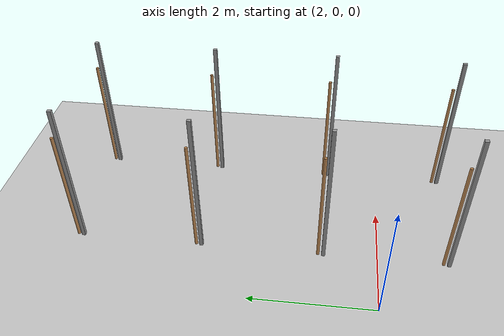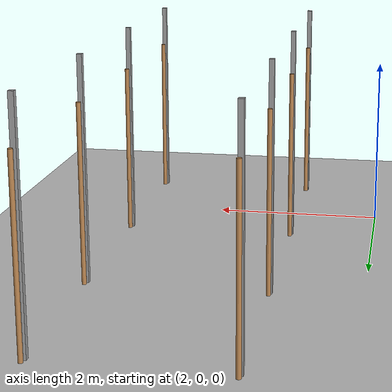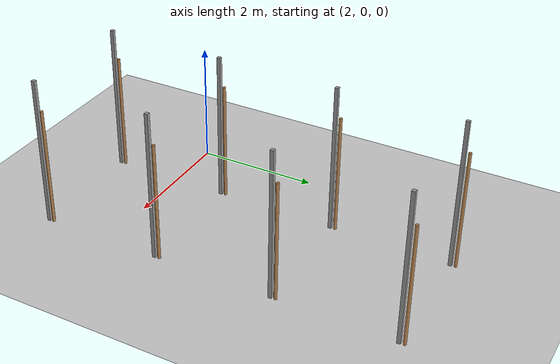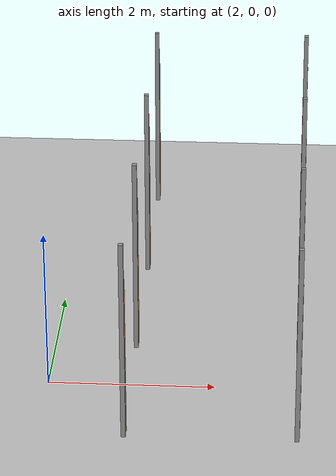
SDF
<sdf version="1.7">
 <world name="default">
  <model name="ground_plane">
   <static>1</static>
   <link name="link">
    <collision name="collision">
     <geometry><plane><normal>0 0 1</normal><size>100 100</size></plane></geometry>
     <surface><friction><ode><mu>100</mu><mu2>50</mu2></ode></friction></surface>
    </collision>
    <visual name="visual">
     <cast_shadows>0</cast_shadows>
     <geometry><plane><normal>0 0 1</normal><size>100 100</size></plane></geometry>
     <material>
      <script><uri>file://media/materials/scripts/gazebo.material</uri><name>Gazebo/Grey</name></script>
     </material>
    </visual>
   </link>
  </model>
  <model name="vineyard1_clone_2">
   <pose>3 -1 0 0 -0 0</pose>
   <frame name="vineyard::__model__" attached_to="vineyard::link">
    <pose relative_to="__model__">0 0 0 0 -0 0</pose>
   </frame>
   <link name="vineyard::link">
    <pose relative_to="vineyard::__model__">0 -0.042492 1.02106 0 -0 0</pose>
    <inertial>
     <mass>0.0175</mass>
     <inertia>
      <ixx>9.75e-06</ixx>
      <ixy>0</ixy>
      <ixz>0</ixz>
      <iyy>9.75e-06</iyy>
      <iyz>0</iyz>
      <izz>8.3e-07</izz>
     </inertia>
    </inertial>
    <visual name="visual">
     <geometry><cylinder><radius>0.025</radius><length>2</length></cylinder></geometry>
     <material>
      <script><uri>file://media/materials/scripts/gazebo.material</uri><name>Gazebo/Wood</name></script>
      <shader type="pixel"><normal_map>__default__</normal_map></shader>
      <ambient>1 1 1 1</ambient>
      <diffuse>1 1 1 1</diffuse>
      <specular>0.2 0.2 0.2 1</specular>
      <emissive>0 0 0 1</emissive>
     </material>
    </visual>
    <collision name="collision">
     <geometry><cylinder><radius>0.025</radius><length>2</length></cylinder></geometry>
     <surface>
      <friction>
       <ode><mu>1</mu><mu2>1</mu2><fdir1>0 0 0</fdir1><slip1>0</slip1><slip2>0</slip2></ode>
       <torsional>
        <coefficient>1</coefficient>
        <patch_radius>0</patch_radius>
        <surface_radius>0.01</surface_radius>
        <use_patch_radius>0</use_patch_radius>
        <ode><slip>0</slip></ode>
       </torsional>
      </friction>
      <bounce><restitution_coefficient>0</restitution_coefficient><threshold>1e+06</threshold></bounce>
      <contact>
       <collide_without_contact>0</collide_without_contact>
       <collide_without_contact_bitmask>1</collide_without_contact_bitmask>
       <collide_bitmask>1</collide_bitmask>
       <ode>
        <soft_cfm>0</soft_cfm>
        <soft_erp>0.2</soft_erp>
        <kp>100000</kp>
        <kd>100</kd>
        <max_vel>100</max_vel>
        <min_depth>0.001</min_depth>
       </ode>
       <bullet>
        <split_impulse>1</split_impulse>
        <split_impulse_penetration_threshold>-0.01</split_impulse_penetration_threshold>
        <soft_cfm>0</soft_cfm>
        <soft_erp>0.2</soft_erp>
        <kp>100000</kp>
        <kd>100</kd>
       </bullet>
      </contact>
     </surface>
    </collision>
   </link>
   <link name="vineyard::link_0">
    <inertial>
     <mass>1</mass>
     <inertia>
      <ixx>0.166667</ixx>
      <ixy>0</ixy>
      <ixz>0</ixz>
      <iyy>0.166667</iyy>
      <iyz>0</iyz>
      <izz>0.166667</izz>
     </inertia>
    </inertial>
    <pose relative_to="vineyard::__model__">-0.005498 -0.128915 1.26447 -1.3e-05 1.5e-05 -0</pose>
    <visual name="visual">
     <geometry><box><size>0.055 0.06 2.5</size></box></geometry>
     <material>
      <lighting>1</lighting>
      <script><uri>file://media/materials/scripts/gazebo.material</uri><name>Gazebo/Grey</name></script>
      <shader type="pixel"><normal_map>__default__</normal_map></shader>
      <ambient>0.3 0.3 0.3 1</ambient>
      <diffuse>0.7 0.7 0.7 1</diffuse>
      <specular>0.01 0.01 0.01 1</specular>
      <emissive>0 0 0 1</emissive>
     </material>
    </visual>
    <collision name="collision">
     <geometry><box><size>0.055 0.06 2.5</size></box></geometry>
     <surface>
      <friction>
       <ode><mu>1</mu><mu2>1</mu2><fdir1>0 0 0</fdir1><slip1>0</slip1><slip2>0</slip2></ode>
       <torsional>
        <coefficient>1</coefficient>
        <patch_radius>0</patch_radius>
        <surface_radius>0</surface_radius>
        <use_patch_radius>1</use_patch_radius>
        <ode><slip>0</slip></ode>
       </torsional>
      </friction>
      <bounce><restitution_coefficient>0</restitution_coefficient><threshold>1e+06</threshold></bounce>
      <contact>
       <collide_without_contact>0</collide_without_contact>
       <collide_without_contact_bitmask>1</collide_without_contact_bitmask>
       <collide_bitmask>1</collide_bitmask>
       <ode>
        <soft_cfm>0</soft_cfm>
        <soft_erp>0.2</soft_erp>
        <kp>1e+13</kp>
        <kd>1</kd>
        <max_vel>0.01</max_vel>
        <min_depth>0</min_depth>
       </ode>
       <bullet>
        <split_impulse>1</split_impulse>
        <split_impulse_penetration_threshold>-0.01</split_impulse_penetration_threshold>
        <soft_cfm>0</soft_cfm>
        <soft_erp>0.2</soft_erp>
        <kp>1e+13</kp>
        <kd>1</kd>
       </bullet>
      </contact>
     </surface>
    </collision>
   </link>
   <static>1</static>
  </model>
  <model name="vineyard1_clone_3">
   <pose>5 -1 0 0 -0 0</pose>
   <frame name="vineyard::__model__" attached_to="vineyard::link">
    <pose relative_to="__model__">0 0 0 0 -0 0</pose>
   </frame>
   <link name="vineyard::link">
    <pose relative_to="vineyard::__model__">0 -0.042492 1.02106 0 -0 0</pose>
    <inertial>
     <mass>0.0175</mass>
     <inertia>
      <ixx>9.75e-06</ixx>
      <ixy>0</ixy>
      <ixz>0</ixz>
      <iyy>9.75e-06</iyy>
      <iyz>0</iyz>
      <izz>8.3e-07</izz>
     </inertia>
    </inertial>
    <visual name="visual">
     <geometry><cylinder><radius>0.025</radius><length>2</length></cylinder></geometry>
     <material>
      <script><uri>file://media/materials/scripts/gazebo.material</uri><name>Gazebo/Wood</name></script>
      <shader type="pixel"><normal_map>__default__</normal_map></shader>
      <ambient>1 1 1 1</ambient>
      <diffuse>1 1 1 1</diffuse>
      <specular>0.2 0.2 0.2 1</specular>
      <emissive>0 0 0 1</emissive>
     </material>
    </visual>
    <collision name="collision">
     <geometry><cylinder><radius>0.025</radius><length>2</length></cylinder></geometry>
     <surface>
      <friction>
       <ode><mu>1</mu><mu2>1</mu2><fdir1>0 0 0</fdir1><slip1>0</slip1><slip2>0</slip2></ode>
       <torsional>
        <coefficient>1</coefficient>
        <patch_radius>0</patch_radius>
        <surface_radius>0.01</surface_radius>
        <use_patch_radius>0</use_patch_radius>
        <ode><slip>0</slip></ode>
       </torsional>
      </friction>
      <bounce><restitution_coefficient>0</restitution_coefficient><threshold>1e+06</threshold></bounce>
      <contact>
       <collide_without_contact>0</collide_without_contact>
       <collide_without_contact_bitmask>1</collide_without_contact_bitmask>
       <collide_bitmask>1</collide_bitmask>
       <ode>
        <soft_cfm>0</soft_cfm>
        <soft_erp>0.2</soft_erp>
        <kp>100000</kp>
        <kd>100</kd>
        <max_vel>100</max_vel>
        <min_depth>0.001</min_depth>
       </ode>
       <bullet>
        <split_impulse>1</split_impulse>
        <split_impulse_penetration_threshold>-0.01</split_impulse_penetration_threshold>
        <soft_cfm>0</soft_cfm>
        <soft_erp>0.2</soft_erp>
        <kp>100000</kp>
        <kd>100</kd>
       </bullet>
      </contact>
     </surface>
    </collision>
   </link>
   <link name="vineyard::link_0">
    <inertial>
     <mass>1</mass>
     <inertia>
      <ixx>0.166667</ixx>
      <ixy>0</ixy>
      <ixz>0</ixz>
      <iyy>0.166667</iyy>
      <iyz>0</iyz>
      <izz>0.166667</izz>
     </inertia>
    </inertial>
    <pose relative_to="vineyard::__model__">-0.005498 -0.128915 1.26447 -1.3e-05 1.5e-05 -0</pose>
    <visual name="visual">
     <geometry><box><size>0.055 0.06 2.5</size></box></geometry>
     <material>
      <lighting>1</lighting>
      <script><uri>file://media/materials/scripts/gazebo.material</uri><name>Gazebo/Grey</name></script>
      <shader type="pixel"><normal_map>__default__</normal_map></shader>
      <ambient>0.3 0.3 0.3 1</ambient>
      <diffuse>0.7 0.7 0.7 1</diffuse>
      <specular>0.01 0.01 0.01 1</specular>
      <emissive>0 0 0 1</emissive>
     </material>
    </visual>
    <collision name="collision">
     <geometry><box><size>0.055 0.06 2.5</size></box></geometry>
     <surface>
      <friction>
       <ode><mu>1</mu><mu2>1</mu2><fdir1>0 0 0</fdir1><slip1>0</slip1><slip2>0</slip2></ode>
       <torsional>
        <coefficient>1</coefficient>
        <patch_radius>0</patch_radius>
        <surface_radius>0</surface_radius>
        <use_patch_radius>1</use_patch_radius>
        <ode><slip>0</slip></ode>
       </torsional>
      </friction>
      <bounce><restitution_coefficient>0</restitution_coefficient><threshold>1e+06</threshold></bounce>
      <contact>
       <collide_without_contact>0</collide_without_contact>
       <collide_without_contact_bitmask>1</collide_without_contact_bitmask>
       <collide_bitmask>1</collide_bitmask>
       <ode>
        <soft_cfm>0</soft_cfm>
        <soft_erp>0.2</soft_erp>
        <kp>1e+13</kp>
        <kd>1</kd>
        <max_vel>0.01</max_vel>
        <min_depth>0</min_depth>
       </ode>
       <bullet>
        <split_impulse>1</split_impulse>
        <split_impulse_penetration_threshold>-0.01</split_impulse_penetration_threshold>
        <soft_cfm>0</soft_cfm>
        <soft_erp>0.2</soft_erp>
        <kp>1e+13</kp>
        <kd>1</kd>
       </bullet>
      </contact>
     </surface>
    </collision>
   </link>
   <static>1</static>
  </model>
  <model name="vineyard1_clone_6">
   <pose>3 1 0 0 -0 0</pose>
   <frame name="vineyard::__model__" attached_to="vineyard::link">
    <pose relative_to="__model__">0 0 0 0 -0 0</pose>
   </frame>
   <link name="vineyard::link">
    <pose relative_to="vineyard::__model__">0 -0.042492 1.02106 0 -0 0</pose>
    <inertial>
     <mass>0.0175</mass>
     <inertia>
      <ixx>9.75e-06</ixx>
      <ixy>0</ixy>
      <ixz>0</ixz>
      <iyy>9.75e-06</iyy>
      <iyz>0</iyz>
      <izz>8.3e-07</izz>
     </inertia>
    </inertial>
    <visual name="visual">
     <geometry><cylinder><radius>0.025</radius><length>2</length></cylinder></geometry>
     <material>
      <script><uri>file://media/materials/scripts/gazebo.material</uri><name>Gazebo/Wood</name></script>
      <shader type="pixel"><normal_map>__default__</normal_map></shader>
      <ambient>1 1 1 1</ambient>
      <diffuse>1 1 1 1</diffuse>
      <specular>0.2 0.2 0.2 1</specular>
      <emissive>0 0 0 1</emissive>
     </material>
    </visual>
    <collision name="collision">
     <geometry><cylinder><radius>0.025</radius><length>2</length></cylinder></geometry>
     <surface>
      <friction>
       <ode><mu>1</mu><mu2>1</mu2><fdir1>0 0 0</fdir1><slip1>0</slip1><slip2>0</slip2></ode>
       <torsional>
        <coefficient>1</coefficient>
        <patch_radius>0</patch_radius>
        <surface_radius>0.01</surface_radius>
        <use_patch_radius>0</use_patch_radius>
        <ode><slip>0</slip></ode>
       </torsional>
      </friction>
      <bounce><restitution_coefficient>0</restitution_coefficient><threshold>1e+06</threshold></bounce>
      <contact>
       <collide_without_contact>0</collide_without_contact>
       <collide_without_contact_bitmask>1</collide_without_contact_bitmask>
       <collide_bitmask>1</collide_bitmask>
       <ode>
        <soft_cfm>0</soft_cfm>
        <soft_erp>0.2</soft_erp>
        <kp>100000</kp>
        <kd>100</kd>
        <max_vel>100</max_vel>
        <min_depth>0.001</min_depth>
       </ode>
       <bullet>
        <split_impulse>1</split_impulse>
        <split_impulse_penetration_threshold>-0.01</split_impulse_penetration_threshold>
        <soft_cfm>0</soft_cfm>
        <soft_erp>0.2</soft_erp>
        <kp>100000</kp>
        <kd>100</kd>
       </bullet>
      </contact>
     </surface>
    </collision>
   </link>
   <link name="vineyard::link_0">
    <inertial>
     <mass>1</mass>
     <inertia>
      <ixx>0.166667</ixx>
      <ixy>0</ixy>
      <ixz>0</ixz>
      <iyy>0.166667</iyy>
      <iyz>0</iyz>
      <izz>0.166667</izz>
     </inertia>
    </inertial>
    <pose relative_to="vineyard::__model__">-0.005498 -0.128915 1.26447 -1.3e-05 1.5e-05 -0</pose>
    <visual name="visual">
     <geometry><box><size>0.055 0.06 2.5</size></box></geometry>
     <material>
      <lighting>1</lighting>
      <script><uri>file://media/materials/scripts/gazebo.material</uri><name>Gazebo/Grey</name></script>
      <shader type="pixel"><normal_map>__default__</normal_map></shader>
      <ambient>0.3 0.3 0.3 1</ambient>
      <diffuse>0.7 0.7 0.7 1</diffuse>
      <specular>0.01 0.01 0.01 1</specular>
      <emissive>0 0 0 1</emissive>
     </material>
    </visual>
    <collision name="collision">
     <geometry><box><size>0.055 0.06 2.5</size></box></geometry>
     <surface>
      <friction>
       <ode><mu>1</mu><mu2>1</mu2><fdir1>0 0 0</fdir1><slip1>0</slip1><slip2>0</slip2></ode>
       <torsional>
        <coefficient>1</coefficient>
        <patch_radius>0</patch_radius>
        <surface_radius>0</surface_radius>
        <use_patch_radius>1</use_patch_radius>
        <ode><slip>0</slip></ode>
       </torsional>
      </friction>
      <bounce><restitution_coefficient>0</restitution_coefficient><threshold>1e+06</threshold></bounce>
      <contact>
       <collide_without_contact>0</collide_without_contact>
       <collide_without_contact_bitmask>1</collide_without_contact_bitmask>
       <collide_bitmask>1</collide_bitmask>
       <ode>
        <soft_cfm>0</soft_cfm>
        <soft_erp>0.2</soft_erp>
        <kp>1e+13</kp>
        <kd>1</kd>
        <max_vel>0.01</max_vel>
        <min_depth>0</min_depth>
       </ode>
       <bullet>
        <split_impulse>1</split_impulse>
        <split_impulse_penetration_threshold>-0.01</split_impulse_penetration_threshold>
        <soft_cfm>0</soft_cfm>
        <soft_erp>0.2</soft_erp>
        <kp>1e+13</kp>
        <kd>1</kd>
       </bullet>
      </contact>
     </surface>
    </collision>
   </link>
   <static>1</static>
  </model>
  <model name="vineyard1_clone_7">
   <pose>5 1 0 0 -0 0</pose>
   <frame name="vineyard::__model__" attached_to="vineyard::link">
    <pose relative_to="__model__">0 0 0 0 -0 0</pose>
   </frame>
   <link name="vineyard::link">
    <pose relative_to="vineyard::__model__">0 -0.042492 1.02106 0 -0 0</pose>
    <inertial>
     <mass>0.0175</mass>
     <inertia>
      <ixx>9.75e-06</ixx>
      <ixy>0</ixy>
      <ixz>0</ixz>
      <iyy>9.75e-06</iyy>
      <iyz>0</iyz>
      <izz>8.3e-07</izz>
     </inertia>
    </inertial>
    <visual name="visual">
     <geometry><cylinder><radius>0.025</radius><length>2</length></cylinder></geometry>
     <material>
      <script><uri>file://media/materials/scripts/gazebo.material</uri><name>Gazebo/Wood</name></script>
      <shader type="pixel"><normal_map>__default__</normal_map></shader>
      <ambient>1 1 1 1</ambient>
      <diffuse>1 1 1 1</diffuse>
      <specular>0.2 0.2 0.2 1</specular>
      <emissive>0 0 0 1</emissive>
     </material>
    </visual>
    <collision name="collision">
     <geometry><cylinder><radius>0.025</radius><length>2</length></cylinder></geometry>
     <surface>
      <friction>
       <ode><mu>1</mu><mu2>1</mu2><fdir1>0 0 0</fdir1><slip1>0</slip1><slip2>0</slip2></ode>
       <torsional>
        <coefficient>1</coefficient>
        <patch_radius>0</patch_radius>
        <surface_radius>0.01</surface_radius>
        <use_patch_radius>0</use_patch_radius>
        <ode><slip>0</slip></ode>
       </torsional>
      </friction>
      <bounce><restitution_coefficient>0</restitution_coefficient><threshold>1e+06</threshold></bounce>
      <contact>
       <collide_without_contact>0</collide_without_contact>
       <collide_without_contact_bitmask>1</collide_without_contact_bitmask>
       <collide_bitmask>1</collide_bitmask>
       <ode>
        <soft_cfm>0</soft_cfm>
        <soft_erp>0.2</soft_erp>
        <kp>100000</kp>
        <kd>100</kd>
        <max_vel>100</max_vel>
        <min_depth>0.001</min_depth>
       </ode>
       <bullet>
        <split_impulse>1</split_impulse>
        <split_impulse_penetration_threshold>-0.01</split_impulse_penetration_threshold>
        <soft_cfm>0</soft_cfm>
        <soft_erp>0.2</soft_erp>
        <kp>100000</kp>
        <kd>100</kd>
       </bullet>
      </contact>
     </surface>
    </collision>
   </link>
   <link name="vineyard::link_0">
    <inertial>
     <mass>1</mass>
     <inertia>
      <ixx>0.166667</ixx>
      <ixy>0</ixy>
      <ixz>0</ixz>
      <iyy>0.166667</iyy>
      <iyz>0</iyz>
      <izz>0.166667</izz>
     </inertia>
    </inertial>
    <pose relative_to="vineyard::__model__">-0.005498 -0.128915 1.26447 -1.3e-05 1.5e-05 -0</pose>
    <visual name="visual">
     <geometry><box><size>0.055 0.06 2.5</size></box></geometry>
     <material>
      <lighting>1</lighting>
      <script><uri>file://media/materials/scripts/gazebo.material</uri><name>Gazebo/Grey</name></script>
      <shader type="pixel"><normal_map>__default__</normal_map></shader>
      <ambient>0.3 0.3 0.3 1</ambient>
      <diffuse>0.7 0.7 0.7 1</diffuse>
      <specular>0.01 0.01 0.01 1</specular>
      <emissive>0 0 0 1</emissive>
     </material>
    </visual>
    <collision name="collision">
     <geometry><box><size>0.055 0.06 2.5</size></box></geometry>
     <surface>
      <friction>
       <ode><mu>1</mu><mu2>1</mu2><fdir1>0 0 0</fdir1><slip1>0</slip1><slip2>0</slip2></ode>
       <torsional>
        <coefficient>1</coefficient>
        <patch_radius>0</patch_radius>
        <surface_radius>0</surface_radius>
        <use_patch_radius>1</use_patch_radius>
        <ode><slip>0</slip></ode>
       </torsional>
      </friction>
      <bounce><restitution_coefficient>0</restitution_coefficient><threshold>1e+06</threshold></bounce>
      <contact>
       <collide_without_contact>0</collide_without_contact>
       <collide_without_contact_bitmask>1</collide_without_contact_bitmask>
       <collide_bitmask>1</collide_bitmask>
       <ode>
        <soft_cfm>0</soft_cfm>
        <soft_erp>0.2</soft_erp>
        <kp>1e+13</kp>
        <kd>1</kd>
        <max_vel>0.01</max_vel>
        <min_depth>0</min_depth>
       </ode>
       <bullet>
        <split_impulse>1</split_impulse>
        <split_impulse_penetration_threshold>-0.01</split_impulse_penetration_threshold>
        <soft_cfm>0</soft_cfm>
        <soft_erp>0.2</soft_erp>
        <kp>1e+13</kp>
        <kd>1</kd>
       </bullet>
      </contact>
     </surface>
    </collision>
   </link>
   <static>1</static>
  </model>
  <model name="vineyard1_clone_10">
   <pose>3 3 0 0 -0 0</pose>
   <frame name="vineyard::__model__" attached_to="vineyard::link">
    <pose relative_to="__model__">0 0 0 0 -0 0</pose>
   </frame>
   <link name="vineyard::link">
    <pose relative_to="vineyard::__model__">0 -0.042492 1.02106 0 -0 0</pose>
    <inertial>
     <mass>0.0175</mass>
     <inertia>
      <ixx>9.75e-06</ixx>
      <ixy>0</ixy>
      <ixz>0</ixz>
      <iyy>9.75e-06</iyy>
      <iyz>0</iyz>
      <izz>8.3e-07</izz>
     </inertia>
    </inertial>
    <visual name="visual">
     <geometry><cylinder><radius>0.025</radius><length>2</length></cylinder></geometry>
     <material>
      <script><uri>file://media/materials/scripts/gazebo.material</uri><name>Gazebo/Wood</name></script>
      <shader type="pixel"><normal_map>__default__</normal_map></shader>
      <ambient>1 1 1 1</ambient>
      <diffuse>1 1 1 1</diffuse>
      <specular>0.2 0.2 0.2 1</specular>
      <emissive>0 0 0 1</emissive>
     </material>
    </visual>
    <collision name="collision">
     <geometry><cylinder><radius>0.025</radius><length>2</length></cylinder></geometry>
     <surface>
      <friction>
       <ode><mu>1</mu><mu2>1</mu2><fdir1>0 0 0</fdir1><slip1>0</slip1><slip2>0</slip2></ode>
       <torsional>
        <coefficient>1</coefficient>
        <patch_radius>0</patch_radius>
        <surface_radius>0.01</surface_radius>
        <use_patch_radius>0</use_patch_radius>
        <ode><slip>0</slip></ode>
       </torsional>
      </friction>
      <bounce><restitution_coefficient>0</restitution_coefficient><threshold>1e+06</threshold></bounce>
      <contact>
       <collide_without_contact>0</collide_without_contact>
       <collide_without_contact_bitmask>1</collide_without_contact_bitmask>
       <collide_bitmask>1</collide_bitmask>
       <ode>
        <soft_cfm>0</soft_cfm>
        <soft_erp>0.2</soft_erp>
        <kp>100000</kp>
        <kd>100</kd>
        <max_vel>100</max_vel>
        <min_depth>0.001</min_depth>
       </ode>
       <bullet>
        <split_impulse>1</split_impulse>
        <split_impulse_penetration_threshold>-0.01</split_impulse_penetration_threshold>
        <soft_cfm>0</soft_cfm>
        <soft_erp>0.2</soft_erp>
        <kp>100000</kp>
        <kd>100</kd>
       </bullet>
      </contact>
     </surface>
    </collision>
   </link>
   <link name="vineyard::link_0">
    <inertial>
     <mass>1</mass>
     <inertia>
      <ixx>0.166667</ixx>
      <ixy>0</ixy>
      <ixz>0</ixz>
      <iyy>0.166667</iyy>
      <iyz>0</iyz>
      <izz>0.166667</izz>
     </inertia>
    </inertial>
    <pose relative_to="vineyard::__model__">-0.005498 -0.128915 1.26447 -1.3e-05 1.5e-05 -0</pose>
    <visual name="visual">
     <geometry><box><size>0.055 0.06 2.5</size></box></geometry>
     <material>
      <lighting>1</lighting>
      <script><uri>file://media/materials/scripts/gazebo.material</uri><name>Gazebo/Grey</name></script>
      <shader type="pixel"><normal_map>__default__</normal_map></shader>
      <ambient>0.3 0.3 0.3 1</ambient>
      <diffuse>0.7 0.7 0.7 1</diffuse>
      <specular>0.01 0.01 0.01 1</specular>
      <emissive>0 0 0 1</emissive>
     </material>
    </visual>
    <collision name="collision">
     <geometry><box><size>0.055 0.06 2.5</size></box></geometry>
     <surface>
      <friction>
       <ode><mu>1</mu><mu2>1</mu2><fdir1>0 0 0</fdir1><slip1>0</slip1><slip2>0</slip2></ode>
       <torsional>
        <coefficient>1</coefficient>
        <patch_radius>0</patch_radius>
        <surface_radius>0</surface_radius>
        <use_patch_radius>1</use_patch_radius>
        <ode><slip>0</slip></ode>
       </torsional>
      </friction>
      <bounce><restitution_coefficient>0</restitution_coefficient><threshold>1e+06</threshold></bounce>
      <contact>
       <collide_without_contact>0</collide_without_contact>
       <collide_without_contact_bitmask>1</collide_without_contact_bitmask>
       <collide_bitmask>1</collide_bitmask>
       <ode>
        <soft_cfm>0</soft_cfm>
        <soft_erp>0.2</soft_erp>
        <kp>1e+13</kp>
        <kd>1</kd>
        <max_vel>0.01</max_vel>
        <min_depth>0</min_depth>
       </ode>
       <bullet>
        <split_impulse>1</split_impulse>
        <split_impulse_penetration_threshold>-0.01</split_impulse_penetration_threshold>
        <soft_cfm>0</soft_cfm>
        <soft_erp>0.2</soft_erp>
        <kp>1e+13</kp>
        <kd>1</kd>
       </bullet>
      </contact>
     </surface>
    </collision>
   </link>
   <static>1</static>
  </model>
  <model name="vineyard1_clone_11">
   <pose>5 3 0 0 -0 0</pose>
   <frame name="vineyard::__model__" attached_to="vineyard::link">
    <pose relative_to="__model__">0 0 0 0 -0 0</pose>
   </frame>
   <link name="vineyard::link">
    <pose relative_to="vineyard::__model__">0 -0.042492 1.02106 0 -0 0</pose>
    <inertial>
     <mass>0.0175</mass>
     <inertia>
      <ixx>9.75e-06</ixx>
      <ixy>0</ixy>
      <ixz>0</ixz>
      <iyy>9.75e-06</iyy>
      <iyz>0</iyz>
      <izz>8.3e-07</izz>
     </inertia>
    </inertial>
    <visual name="visual">
     <geometry><cylinder><radius>0.025</radius><length>2</length></cylinder></geometry>
     <material>
      <script><uri>file://media/materials/scripts/gazebo.material</uri><name>Gazebo/Wood</name></script>
      <shader type="pixel"><normal_map>__default__</normal_map></shader>
      <ambient>1 1 1 1</ambient>
      <diffuse>1 1 1 1</diffuse>
      <specular>0.2 0.2 0.2 1</specular>
      <emissive>0 0 0 1</emissive>
     </material>
    </visual>
    <collision name="collision">
     <geometry><cylinder><radius>0.025</radius><length>2</length></cylinder></geometry>
     <surface>
      <friction>
       <ode><mu>1</mu><mu2>1</mu2><fdir1>0 0 0</fdir1><slip1>0</slip1><slip2>0</slip2></ode>
       <torsional>
        <coefficient>1</coefficient>
        <patch_radius>0</patch_radius>
        <surface_radius>0.01</surface_radius>
        <use_patch_radius>0</use_patch_radius>
        <ode><slip>0</slip></ode>
       </torsional>
      </friction>
      <bounce><restitution_coefficient>0</restitution_coefficient><threshold>1e+06</threshold></bounce>
      <contact>
       <collide_without_contact>0</collide_without_contact>
       <collide_without_contact_bitmask>1</collide_without_contact_bitmask>
       <collide_bitmask>1</collide_bitmask>
       <ode>
        <soft_cfm>0</soft_cfm>
        <soft_erp>0.2</soft_erp>
        <kp>100000</kp>
        <kd>100</kd>
        <max_vel>100</max_vel>
        <min_depth>0.001</min_depth>
       </ode>
       <bullet>
        <split_impulse>1</split_impulse>
        <split_impulse_penetration_threshold>-0.01</split_impulse_penetration_threshold>
        <soft_cfm>0</soft_cfm>
        <soft_erp>0.2</soft_erp>
        <kp>100000</kp>
        <kd>100</kd>
       </bullet>
      </contact>
     </surface>
    </collision>
   </link>
   <link name="vineyard::link_0">
    <inertial>
     <mass>1</mass>
     <inertia>
      <ixx>0.166667</ixx>
      <ixy>0</ixy>
      <ixz>0</ixz>
      <iyy>0.166667</iyy>
      <iyz>0</iyz>
      <izz>0.166667</izz>
     </inertia>
    </inertial>
    <pose relative_to="vineyard::__model__">-0.005498 -0.128915 1.26447 -1.3e-05 1.5e-05 -0</pose>
    <visual name="visual">
     <geometry><box><size>0.055 0.06 2.5</size></box></geometry>
     <material>
      <lighting>1</lighting>
      <script><uri>file://media/materials/scripts/gazebo.material</uri><name>Gazebo/Grey</name></script>
      <shader type="pixel"><normal_map>__default__</normal_map></shader>
      <ambient>0.3 0.3 0.3 1</ambient>
      <diffuse>0.7 0.7 0.7 1</diffuse>
      <specular>0.01 0.01 0.01 1</specular>
      <emissive>0 0 0 1</emissive>
     </material>
    </visual>
    <collision name="collision">
     <geometry><box><size>0.055 0.06 2.5</size></box></geometry>
     <surface>
      <friction>
       <ode><mu>1</mu><mu2>1</mu2><fdir1>0 0 0</fdir1><slip1>0</slip1><slip2>0</slip2></ode>
       <torsional>
        <coefficient>1</coefficient>
        <patch_radius>0</patch_radius>
        <surface_radius>0</surface_radius>
        <use_patch_radius>1</use_patch_radius>
        <ode><slip>0</slip></ode>
       </torsional>
      </friction>
      <bounce><restitution_coefficient>0</restitution_coefficient><threshold>1e+06</threshold></bounce>
      <contact>
       <collide_without_contact>0</collide_without_contact>
       <collide_without_contact_bitmask>1</collide_without_contact_bitmask>
       <collide_bitmask>1</collide_bitmask>
       <ode>
        <soft_cfm>0</soft_cfm>
        <soft_erp>0.2</soft_erp>
        <kp>1e+13</kp>
        <kd>1</kd>
        <max_vel>0.01</max_vel>
        <min_depth>0</min_depth>
       </ode>
       <bullet>
        <split_impulse>1</split_impulse>
        <split_impulse_penetration_threshold>-0.01</split_impulse_penetration_threshold>
        <soft_cfm>0</soft_cfm>
        <soft_erp>0.2</soft_erp>
        <kp>1e+13</kp>
        <kd>1</kd>
       </bullet>
      </contact>
     </surface>
    </collision>
   </link>
   <static>1</static>
  </model>
  <model name="vineyard1_clone_14">
   <pose>3 5 0 0 -0 0</pose>
   <frame name="vineyard::__model__" attached_to="vineyard::link">
    <pose relative_to="__model__">0 0 0 0 -0 0</pose>
   </frame>
   <link name="vineyard::link">
    <pose relative_to="vineyard::__model__">0 -0.042492 1.02106 0 -0 0</pose>
    <inertial>
     <mass>0.0175</mass>
     <inertia>
      <ixx>9.75e-06</ixx>
      <ixy>0</ixy>
      <ixz>0</ixz>
      <iyy>9.75e-06</iyy>
      <iyz>0</iyz>
      <izz>8.3e-07</izz>
     </inertia>
    </inertial>
    <visual name="visual">
     <geometry><cylinder><radius>0.025</radius><length>2</length></cylinder></geometry>
     <material>
      <script><uri>file://media/materials/scripts/gazebo.material</uri><name>Gazebo/Wood</name></script>
      <shader type="pixel"><normal_map>__default__</normal_map></shader>
      <ambient>1 1 1 1</ambient>
      <diffuse>1 1 1 1</diffuse>
      <specular>0.2 0.2 0.2 1</specular>
      <emissive>0 0 0 1</emissive>
     </material>
    </visual>
    <collision name="collision">
     <geometry><cylinder><radius>0.025</radius><length>2</length></cylinder></geometry>
     <surface>
      <friction>
       <ode><mu>1</mu><mu2>1</mu2><fdir1>0 0 0</fdir1><slip1>0</slip1><slip2>0</slip2></ode>
       <torsional>
        <coefficient>1</coefficient>
        <patch_radius>0</patch_radius>
        <surface_radius>0.01</surface_radius>
        <use_patch_radius>0</use_patch_radius>
        <ode><slip>0</slip></ode>
       </torsional>
      </friction>
      <bounce><restitution_coefficient>0</restitution_coefficient><threshold>1e+06</threshold></bounce>
      <contact>
       <collide_without_contact>0</collide_without_contact>
       <collide_without_contact_bitmask>1</collide_without_contact_bitmask>
       <collide_bitmask>1</collide_bitmask>
       <ode>
        <soft_cfm>0</soft_cfm>
        <soft_erp>0.2</soft_erp>
        <kp>100000</kp>
        <kd>100</kd>
        <max_vel>100</max_vel>
        <min_depth>0.001</min_depth>
       </ode>
       <bullet>
        <split_impulse>1</split_impulse>
        <split_impulse_penetration_threshold>-0.01</split_impulse_penetration_threshold>
        <soft_cfm>0</soft_cfm>
        <soft_erp>0.2</soft_erp>
        <kp>100000</kp>
        <kd>100</kd>
       </bullet>
      </contact>
     </surface>
    </collision>
   </link>
   <link name="vineyard::link_0">
    <inertial>
     <mass>1</mass>
     <inertia>
      <ixx>0.166667</ixx>
      <ixy>0</ixy>
      <ixz>0</ixz>
      <iyy>0.166667</iyy>
      <iyz>0</iyz>
      <izz>0.166667</izz>
     </inertia>
    </inertial>
    <pose relative_to="vineyard::__model__">-0.005498 -0.128915 1.26447 -1.3e-05 1.5e-05 -0</pose>
    <visual name="visual">
     <geometry><box><size>0.055 0.06 2.5</size></box></geometry>
     <material>
      <lighting>1</lighting>
      <script><uri>file://media/materials/scripts/gazebo.material</uri><name>Gazebo/Grey</name></script>
      <shader type="pixel"><normal_map>__default__</normal_map></shader>
      <ambient>0.3 0.3 0.3 1</ambient>
      <diffuse>0.7 0.7 0.7 1</diffuse>
      <specular>0.01 0.01 0.01 1</specular>
      <emissive>0 0 0 1</emissive>
     </material>
    </visual>
    <collision name="collision">
     <geometry><box><size>0.055 0.06 2.5</size></box></geometry>
     <surface>
      <friction>
       <ode><mu>1</mu><mu2>1</mu2><fdir1>0 0 0</fdir1><slip1>0</slip1><slip2>0</slip2></ode>
       <torsional>
        <coefficient>1</coefficient>
        <patch_radius>0</patch_radius>
        <surface_radius>0</surface_radius>
        <use_patch_radius>1</use_patch_radius>
        <ode><slip>0</slip></ode>
       </torsional>
      </friction>
      <bounce><restitution_coefficient>0</restitution_coefficient><threshold>1e+06</threshold></bounce>
      <contact>
       <collide_without_contact>0</collide_without_contact>
       <collide_without_contact_bitmask>1</collide_without_contact_bitmask>
       <collide_bitmask>1</collide_bitmask>
       <ode>
        <soft_cfm>0</soft_cfm>
        <soft_erp>0.2</soft_erp>
        <kp>1e+13</kp>
        <kd>1</kd>
        <max_vel>0.01</max_vel>
        <min_depth>0</min_depth>
       </ode>
       <bullet>
        <split_impulse>1</split_impulse>
        <split_impulse_penetration_threshold>-0.01</split_impulse_penetration_threshold>
        <soft_cfm>0</soft_cfm>
        <soft_erp>0.2</soft_erp>
        <kp>1e+13</kp>
        <kd>1</kd>
       </bullet>
      </contact>
     </surface>
    </collision>
   </link>
   <static>1</static>
  </model>
  <model name="vineyard1_clone_15">
   <pose>5 5 0 0 -0 0</pose>
   <frame name="vineyard::__model__" attached_to="vineyard::link">
    <pose relative_to="__model__">0 0 0 0 -0 0</pose>
   </frame>
   <link name="vineyard::link">
    <pose relative_to="vineyard::__model__">0 -0.042492 1.02106 0 -0 0</pose>
    <inertial>
     <mass>0.0175</mass>
     <inertia>
      <ixx>9.75e-06</ixx>
      <ixy>0</ixy>
      <ixz>0</ixz>
      <iyy>9.75e-06</iyy>
      <iyz>0</iyz>
      <izz>8.3e-07</izz>
     </inertia>
    </inertial>
    <visual name="visual">
     <geometry><cylinder><radius>0.025</radius><length>2</length></cylinder></geometry>
     <material>
      <script><uri>file://media/materials/scripts/gazebo.material</uri><name>Gazebo/Wood</name></script>
      <shader type="pixel"><normal_map>__default__</normal_map></shader>
      <ambient>1 1 1 1</ambient>
      <diffuse>1 1 1 1</diffuse>
      <specular>0.2 0.2 0.2 1</specular>
      <emissive>0 0 0 1</emissive>
     </material>
    </visual>
    <collision name="collision">
     <geometry><cylinder><radius>0.025</radius><length>2</length></cylinder></geometry>
     <surface>
      <friction>
       <ode><mu>1</mu><mu2>1</mu2><fdir1>0 0 0</fdir1><slip1>0</slip1><slip2>0</slip2></ode>
       <torsional>
        <coefficient>1</coefficient>
        <patch_radius>0</patch_radius>
        <surface_radius>0.01</surface_radius>
        <use_patch_radius>0</use_patch_radius>
        <ode><slip>0</slip></ode>
       </torsional>
      </friction>
      <bounce><restitution_coefficient>0</restitution_coefficient><threshold>1e+06</threshold></bounce>
      <contact>
       <collide_without_contact>0</collide_without_contact>
       <collide_without_contact_bitmask>1</collide_without_contact_bitmask>
       <collide_bitmask>1</collide_bitmask>
       <ode>
        <soft_cfm>0</soft_cfm>
        <soft_erp>0.2</soft_erp>
        <kp>100000</kp>
        <kd>100</kd>
        <max_vel>100</max_vel>
        <min_depth>0.001</min_depth>
       </ode>
       <bullet>
        <split_impulse>1</split_impulse>
        <split_impulse_penetration_threshold>-0.01</split_impulse_penetration_threshold>
        <soft_cfm>0</soft_cfm>
        <soft_erp>0.2</soft_erp>
        <kp>100000</kp>
        <kd>100</kd>
       </bullet>
      </contact>
     </surface>
    </collision>
   </link>
   <link name="vineyard::link_0">
    <inertial>
     <mass>1</mass>
     <inertia>
      <ixx>0.166667</ixx>
      <ixy>0</ixy>
      <ixz>0</ixz>
      <iyy>0.166667</iyy>
      <iyz>0</iyz>
      <izz>0.166667</izz>
     </inertia>
    </inertial>
    <pose relative_to="vineyard::__model__">-0.005498 -0.128915 1.26447 -1.3e-05 1.5e-05 -0</pose>
    <visual name="visual">
     <geometry><box><size>0.055 0.06 2.5</size></box></geometry>
     <material>
      <lighting>1</lighting>
      <script><uri>file://media/materials/scripts/gazebo.material</uri><name>Gazebo/Grey</name></script>
      <shader type="pixel"><normal_map>__default__</normal_map></shader>
      <ambient>0.3 0.3 0.3 1</ambient>
      <diffuse>0.7 0.7 0.7 1</diffuse>
      <specular>0.01 0.01 0.01 1</specular>
      <emissive>0 0 0 1</emissive>
     </material>
    </visual>
    <collision name="collision">
     <geometry><box><size>0.055 0.06 2.5</size></box></geometry>
     <surface>
      <friction>
       <ode><mu>1</mu><mu2>1</mu2><fdir1>0 0 0</fdir1><slip1>0</slip1><slip2>0</slip2></ode>
       <torsional>
        <coefficient>1</coefficient>
        <patch_radius>0</patch_radius>
        <surface_radius>0</surface_radius>
        <use_patch_radius>1</use_patch_radius>
        <ode><slip>0</slip></ode>
       </torsional>
      </friction>
      <bounce><restitution_coefficient>0</restitution_coefficient><threshold>1e+06</threshold></bounce>
      <contact>
       <collide_without_contact>0</collide_without_contact>
       <collide_without_contact_bitmask>1</collide_without_contact_bitmask>
       <collide_bitmask>1</collide_bitmask>
       <ode>
        <soft_cfm>0</soft_cfm>
        <soft_erp>0.2</soft_erp>
        <kp>1e+13</kp>
        <kd>1</kd>
        <max_vel>0.01</max_vel>
        <min_depth>0</min_depth>
       </ode>
       <bullet>
        <split_impulse>1</split_impulse>
        <split_impulse_penetration_threshold>-0.01</split_impulse_penetration_threshold>
        <soft_cfm>0</soft_cfm>
        <soft_erp>0.2</soft_erp>
        <kp>1e+13</kp>
        <kd>1</kd>
       </bullet>
      </contact>
     </surface>
    </collision>
   </link>
   <static>1</static>
  </model>
 </world>
</sdf>
